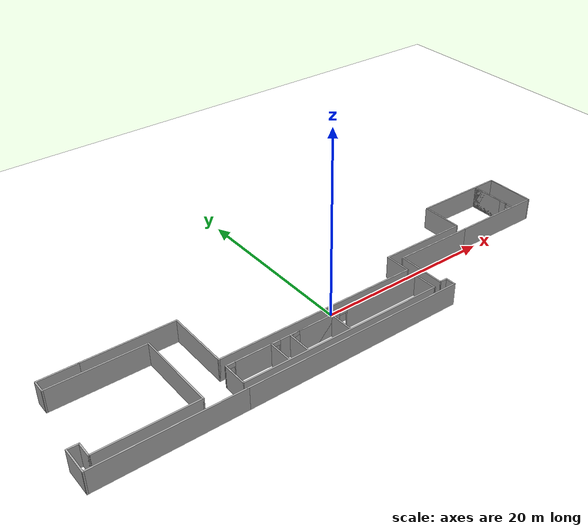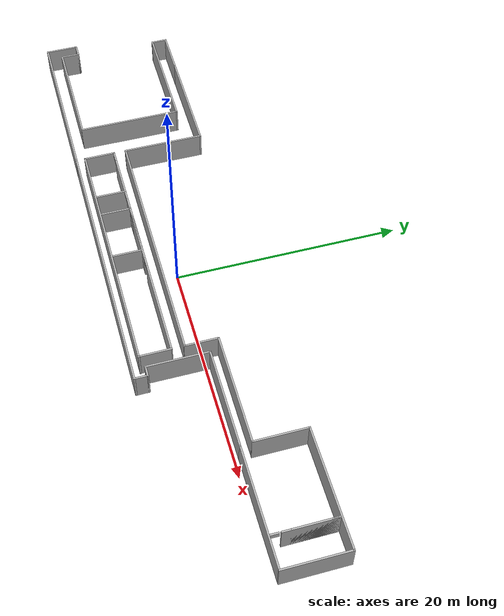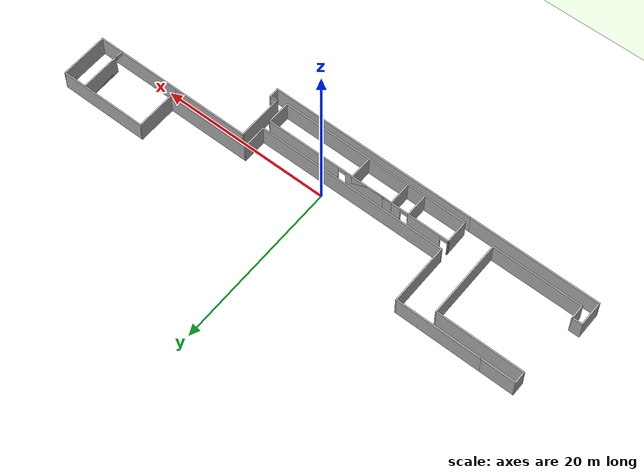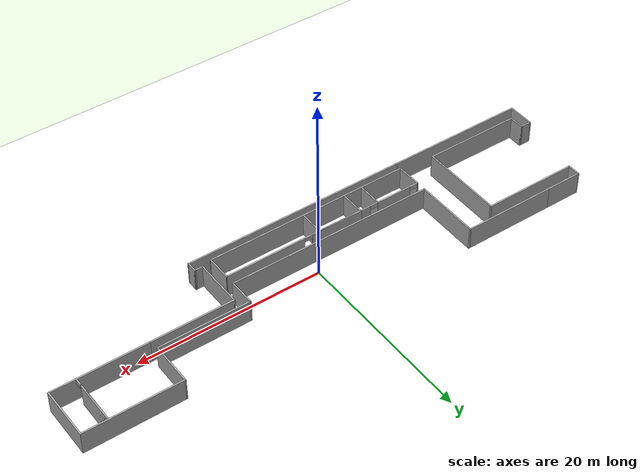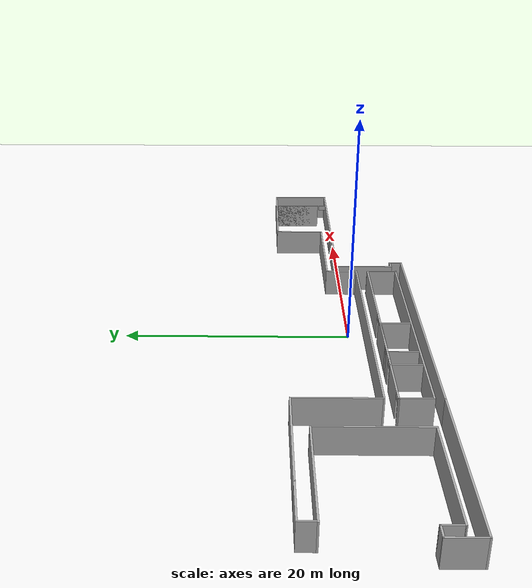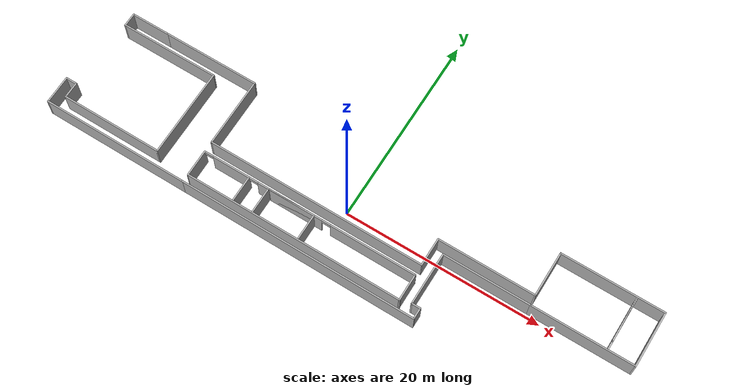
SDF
<?xml version='1.0'?>
<sdf version='1.8'>
  <world name='office_world'>
      <physics name="1ms" type="ignored">
          <max_step_size>0.005</max_step_size>
          <real_time_factor>1.0</real_time_factor>
      </physics>
      <plugin
          filename="libignition-gazebo-physics-system.so"
          name="ignition::gazebo::systems::Physics">
      </plugin>
      <plugin
          filename="libignition-gazebo-user-commands-system.so"
          name="ignition::gazebo::systems::UserCommands">
      </plugin>
      <plugin
          filename="libignition-gazebo-scene-broadcaster-system.so"
          name="ignition::gazebo::systems::SceneBroadcaster">
      </plugin>

    <gui fullscreen="0">
      <plugin filename="GzScene3D" name="3D View">
        <ignition-gui>
            <title>3D View</title>
        </ignition-gui>
        <engine>ogre2</engine>
        <scene>scene</scene>
        <ambient_light>0.4 0.4 0.4</ambient_light>
        <background_color>0.8 0.8 0.8</background_color>
        <camera_pose>-6 0 6 0 0.5 0</camera_pose>
      </plugin>
    </gui>

    <scene>
      <ambient>1 1 1 1</ambient>
      <background> 0.8 0.8 0.8 1</background>
    </scene>

    <model name = "office_v1">
      <pose relative_to='world'>0 0 0 0 0 0</pose>
      <static>true</static>
    <link name='Wall_1'>
      <collision name='Wall_1_Collision'>
        <geometry>
          <box>
            <size>22.5 0.15 2.5</size>
          </box>
        </geometry>
        <pose relative_to='__model__'>0 0 1.25 0 -0 0</pose>
      </collision>
      <visual name='Wall_1_Visual'>
        <pose relative_to='world'>0 0 1.25 0 -0 0</pose>
        <geometry>
          <box>
            <size>22.5 0.15 2.5</size>
          </box>
        </geometry>
        <material>
          <ambient>0.7 0.7 0.7 1</ambient>
          <diffuse> 0.7 0.7 0.7 1</diffuse>
          <specular>0.1 0.1 0.1 1 </specular>
        </material>
      </visual>
      <pose relative_to='__model__'>-2.525 -1.425 0 0 -0 0</pose>
    </link>
    <link name='Wall_18'>
      <collision name='Wall_18_Collision'>
        <geometry>
          <box>
            <size>9 0.15 2.5</size>
          </box>
        </geometry>
        <pose relative_to='__model__'>0 0 1.25 0 -0 0</pose>
      </collision>
      <visual name='Wall_18_Visual'>
        <pose relative_to='world'>0 0 1.25 0 -0 0</pose>
        <geometry>
          <box>
            <size>9 0.15 2.5</size>
          </box>
        </geometry>
      <material>
          <ambient>0.7 0.7 0.7 1</ambient>
          <diffuse> 0.7 0.7 0.7 1</diffuse>
          <specular>0.1 0.1 0.1 1 </specular>
      </material>
      </visual>
      <pose relative_to='__model__'>14.175 0.425 0 0 -0 0</pose>
    </link>
    <link name='Wall_19'>
      <collision name='Wall_19_Collision'>
        <geometry>
          <box>
            <size>10.25 0.15 2.5</size>
          </box>
        </geometry>
        <pose relative_to='__model__'>0 0 1.25 0 -0 0</pose>
      </collision>
      <visual name='Wall_19_Visual'>
        <pose relative_to='world'>0 0 1.25 0 -0 0</pose>
        <geometry>
          <box>
            <size>10.25 0.15 2.5</size>
          </box>
        </geometry>
      <material>
          <ambient>0.7 0.7 0.7 1</ambient>
          <diffuse> 0.7 0.7 0.7 1</diffuse>
          <specular>0.1 0.1 0.1 1 </specular>
      </material>
      </visual>
      <pose relative_to='__model__'>23.65 0.425 0 0 -0 0</pose>
    </link>
    <link name='Wall_2'>
      <collision name='Wall_2_Collision'>
        <geometry>
          <box>
            <size>3 0.15 2.5</size>
          </box>
        </geometry>
        <pose relative_to='__model__'>0 0 1.25 0 -0 0</pose>
      </collision>
      <visual name='Wall_2_Visual'>
        <pose relative_to='world'>0 0 1.25 0 -0 0</pose>
        <geometry>
          <box>
            <size>3 0.15 2.5</size>
          </box>
        </geometry>
      <material>
          <ambient>0.7 0.7 0.7 1</ambient>
          <diffuse> 0.7 0.7 0.7 1</diffuse>
          <specular>0.1 0.1 0.1 1 </specular>
      </material>
      </visual>
      <pose relative_to='__model__'>8.65 -0 0 0 -0 1.5708</pose>
    </link>
    <link name='Wall_22'>
      <pose relative_to='__model__'>-2.525 -2.525 0 0 -0 0</pose>
      <visual name='Wall_22_Visual_0'>
        <pose relative_to='world'>-11.1859 0 1.25 0 -0 0</pose>
        <geometry>
          <box>
            <size>0.128177 0.15 2.5</size>
          </box>
        </geometry>
      <material>
          <ambient>0.7 0.7 0.7 1</ambient>
          <diffuse> 0.7 0.7 0.7 1</diffuse>
          <specular>0.1 0.1 0.1 1 </specular>
      </material>
      </visual>
      <collision name='Wall_22_Collision_0'>
        <geometry>
          <box>
            <size>0.128177 0.15 2.5</size>
          </box>
        </geometry>
        <pose relative_to='__model__'>-11.1859 0 1.25 0 -0 0</pose>
      </collision>
      <visual name='Wall_22_Visual_1'>
        <pose relative_to='world'>-8.24603 0 1.25 0 -0 0</pose>
        <geometry>
          <box>
            <size>3.95159 0.15 2.5</size>
          </box>
        </geometry>
      <material>
          <ambient>0.7 0.7 0.7 1</ambient>
          <diffuse> 0.7 0.7 0.7 1</diffuse>
          <specular>0.1 0.1 0.1 1 </specular>
      </material>
      </visual>
      <collision name='Wall_22_Collision_1'>
        <geometry>
          <box>
            <size>3.95159 0.15 2.5</size>
          </box>
        </geometry>
        <pose relative_to='__model__'>-8.24603 0 1.25 0 -0 0</pose>
      </collision>
      <visual name='Wall_22_Visual_2'>
        <pose relative_to='world'>-4.73281 0 1.25 0 -0 0</pose>
        <geometry>
          <box>
            <size>1.27485 0.15 2.5</size>
          </box>
        </geometry>
      <material>
          <ambient>0.7 0.7 0.7 1</ambient>
          <diffuse> 0.7 0.7 0.7 1</diffuse>
          <specular>0.1 0.1 0.1 1 </specular>
      </material>
      </visual>
      <collision name='Wall_22_Collision_2'>
        <geometry>
          <box>
            <size>1.27485 0.15 2.5</size>
          </box>
        </geometry>
        <pose relative_to='__model__'>-4.73281 0 1.25 0 -0 0</pose>
      </collision>
      <visual name='Wall_22_Visual_3'>
        <pose relative_to='world'>-0.86218 0 1.25 0 -0 0</pose>
        <geometry>
          <box>
            <size>4.6664 0.15 2.5</size>
          </box>
        </geometry>
      <material>
          <ambient>0.7 0.7 0.7 1</ambient>
          <diffuse> 0.7 0.7 0.7 1</diffuse>
          <specular>0.1 0.1 0.1 1 </specular>
      </material>
      </visual>
      <collision name='Wall_22_Collision_3'>
        <geometry>
          <box>
            <size>4.6664 0.15 2.5</size>
          </box>
        </geometry>
        <pose relative_to='__model__'>-0.86218 0 1.25 0 -0 0</pose>
      </collision>
      <visual name='Wall_22_Visual_4'>
        <pose relative_to='world'>6.81051 0 1.25 0 -0 0</pose>
        <geometry>
          <box>
            <size>8.87898 0.15 2.5</size>
          </box>
        </geometry>
      <material>
          <ambient>0.7 0.7 0.7 1</ambient>
          <diffuse> 0.7 0.7 0.7 1</diffuse>
          <specular>0.1 0.1 0.1 1 </specular>
      </material>
      </visual>
      <collision name='Wall_22_Collision_4'>
        <geometry>
          <box>
            <size>8.87898 0.15 2.5</size>
          </box>
        </geometry>
        <pose relative_to='__model__'>6.81051 0 1.25 0 -0 0</pose>
      </collision>
      <visual name='Wall_22_Visual_5'>
        <pose relative_to='world'>-10.6718 0 2.25 0 -0 0</pose>
        <geometry>
          <box>
            <size>0.9 0.15 0.5</size>
          </box>
        </geometry>
      <material>
          <ambient>0.7 0.7 0.7 1</ambient>
          <diffuse> 0.7 0.7 0.7 1</diffuse>
          <specular>0.1 0.1 0.1 1 </specular>
      </material>
      </visual>
      <collision name='Wall_22_Collision_5'>
        <geometry>
          <box>
            <size>0.9 0.15 0.5</size>
          </box>
        </geometry>
        <pose relative_to='__model__'>-10.6718 0 2.25 0 -0 0</pose>
      </collision>
      <visual name='Wall_22_Visual_6'>
        <pose relative_to='world'>-5.82023 0 2.25 0 -0 0</pose>
        <geometry>
          <box>
            <size>0.9 0.15 0.5</size>
          </box>
        </geometry>
      <material>
          <ambient>0.7 0.7 0.7 1</ambient>
          <diffuse> 0.7 0.7 0.7 1</diffuse>
          <specular>0.1 0.1 0.1 1 </specular>
      </material>
      </visual>
      <collision name='Wall_22_Collision_6'>
        <geometry>
          <box>
            <size>0.9 0.15 0.5</size>
          </box>
        </geometry>
        <pose relative_to='__model__'>-5.82023 0 2.25 0 -0 0</pose>
      </collision>
      <visual name='Wall_22_Visual_7'>
        <pose relative_to='world'>-3.64538 0 2.25 0 -0 0</pose>
        <geometry>
          <box>
            <size>0.9 0.15 0.5</size>
          </box>
        </geometry>
      <material>
          <ambient>0.7 0.7 0.7 1</ambient>
          <diffuse> 0.7 0.7 0.7 1</diffuse>
          <specular>0.1 0.1 0.1 1 </specular>
      </material>
      </visual>
      <collision name='Wall_22_Collision_7'>
        <geometry>
          <box>
            <size>0.9 0.15 0.5</size>
          </box>
        </geometry>
        <pose relative_to='__model__'>-3.64538 0 2.25 0 -0 0</pose>
      </collision>
      <visual name='Wall_22_Visual_8'>
        <pose relative_to='world'>1.92102 0 2.25 0 -0 0</pose>
        <geometry>
          <box>
            <size>0.9 0.15 0.5</size>
          </box>
        </geometry>
      <material>
          <ambient>0.7 0.7 0.7 1</ambient>
          <diffuse> 0.7 0.7 0.7 1</diffuse>
          <specular>0.1 0.1 0.1 1 </specular>
      </material>
      </visual>
      <collision name='Wall_22_Collision_8'>
        <geometry>
          <box>
            <size>0.9 0.15 0.5</size>
          </box>
        </geometry>
        <pose relative_to='__model__'>1.92102 0 2.25 0 -0 0</pose>
      </collision>
    </link>
    <link name='Wall_24'>
      <collision name='Wall_24_Collision'>
        <geometry>
          <box>
            <size>2.84984 0.15 2.5</size>
          </box>
        </geometry>
        <pose relative_to='__model__'>0 0 1.25 0 -0 0</pose>
      </collision>
      <visual name='Wall_24_Visual'>
        <pose relative_to='world'>0 0 1.25 0 -0 0</pose>
        <geometry>
          <box>
            <size>2.84984 0.15 2.5</size>
          </box>
        </geometry>
      <material>
          <ambient>0.7 0.7 0.7 1</ambient>
          <diffuse> 0.7 0.7 0.7 1</diffuse>
          <specular>0.1 0.1 0.1 1 </specular>
      </material>
      </visual>
      <pose relative_to='__model__'>8.6576 -3.8749 0 0 -0 -1.56516</pose>
    </link>
    <link name='Wall_25'>
      <collision name='Wall_25_Collision'>
        <geometry>
          <box>
            <size>22.5 0.15 2.5</size>
          </box>
        </geometry>
        <pose relative_to='__model__'>0 0 1.25 0 -0 0</pose>
      </collision>
      <visual name='Wall_25_Visual'>
        <pose relative_to='world'>0 0 1.25 0 -0 0</pose>
        <geometry>
          <box>
            <size>22.5 0.15 2.5</size>
          </box>
        </geometry>
      <material>
          <ambient>0.7 0.7 0.7 1</ambient>
          <diffuse> 0.7 0.7 0.7 1</diffuse>
          <specular>0.1 0.1 0.1 1 </specular>
      </material>
      </visual>
      <pose relative_to='__model__'>-2.47937 -5.2248 0 0 -0 3.14159</pose>
    </link>
    <link name='Wall_26'>
      <collision name='Wall_26_Collision'>
        <geometry>
          <box>
            <size>2.84984 0.15 2.5</size>
          </box>
        </geometry>
        <pose relative_to='__model__'>0 0 1.25 0 -0 0</pose>
      </collision>
      <visual name='Wall_26_Visual'>
        <pose relative_to='world'>0 0 1.25 0 -0 0</pose>
        <geometry>
          <box>
            <size>2.84984 0.15 2.5</size>
          </box>
        </geometry>
      <material>
          <ambient>0.7 0.7 0.7 1</ambient>
          <diffuse> 0.7 0.7 0.7 1</diffuse>
          <specular>0.1 0.1 0.1 1 </specular>
      </material>
      </visual>
      <pose relative_to='__model__'>-13.6924 -3.8749 0 0 -0 1.57643</pose>
    </link>
    <link name='Wall_3'>
      <collision name='Wall_3_Collision'>
        <geometry>
          <box>
            <size>10 0.15 2.5</size>
          </box>
        </geometry>
        <pose relative_to='__model__'>0 0 1.25 0 -0 0</pose>
      </collision>
      <visual name='Wall_3_Visual'>
        <pose relative_to='world'>0 0 1.25 0 -0 0</pose>
        <geometry>
          <box>
            <size>10 0.15 2.5</size>
          </box>
        </geometry>
      <material>
          <ambient>0.7 0.7 0.7 1</ambient>
          <diffuse> 0.7 0.7 0.7 1</diffuse>
          <specular>0.1 0.1 0.1 1 </specular>
      </material>
      </visual>
      <pose relative_to='__model__'>13.575 1.425 0 0 -0 0</pose>
    </link>
    <link name='Wall_30'>
      <collision name='Wall_30_Collision'>
        <geometry>
          <box>
            <size>5.5 0.15 2.5</size>
          </box>
        </geometry>
        <pose relative_to='__model__'>0 0 1.25 0 -0 0</pose>
      </collision>
      <visual name='Wall_30_Visual'>
        <pose relative_to='world'>0 0 1.25 0 -0 0</pose>
        <geometry>
          <box>
            <size>5.5 0.15 2.5</size>
          </box>
        </geometry>
      <material>
          <ambient>0.7 0.7 0.7 1</ambient>
          <diffuse> 0.7 0.7 0.7 1</diffuse>
          <specular>0.1 0.1 0.1 1 </specular>
      </material>
      </visual>
      <pose relative_to='__model__'>9.75 -2.25 0 0 -0 -1.5708</pose>
    </link>
    <link name='Wall_31'>
      <collision name='Wall_31_Collision'>
        <geometry>
          <box>
            <size>1 0.15 2.5</size>
          </box>
        </geometry>
        <pose relative_to='__model__'>0 0 1.25 0 -0 0</pose>
      </collision>
      <visual name='Wall_31_Visual'>
        <pose relative_to='world'>0 0 1.25 0 -0 0</pose>
        <geometry>
          <box>
            <size>1 0.15 2.5</size>
          </box>
        </geometry>
      <material>
          <ambient>0.7 0.7 0.7 1</ambient>
          <diffuse> 0.7 0.7 0.7 1</diffuse>
          <specular>0.1 0.1 0.1 1 </specular>
      </material>
      </visual>
      <pose relative_to='__model__'>10.175 -4.925 0 0 -0 0</pose>
    </link>
    <link name='Wall_32'>
      <collision name='Wall_32_Collision'>
        <geometry>
          <box>
            <size>1.25 0.15 2.5</size>
          </box>
        </geometry>
        <pose relative_to='__model__'>0 0 1.25 0 -0 0</pose>
      </collision>
      <visual name='Wall_32_Visual'>
        <pose relative_to='world'>0 0 1.25 0 -0 0</pose>
        <geometry>
          <box>
            <size>1.25 0.15 2.5</size>
          </box>
        </geometry>
      <material>
          <ambient>0.7 0.7 0.7 1</ambient>
          <diffuse> 0.7 0.7 0.7 1</diffuse>
          <specular>0.1 0.1 0.1 1 </specular>
      </material>
      </visual>
      <pose relative_to='__model__'>10.6 -5.475 0 0 -0 -1.5708</pose>
    </link>
    <link name='Wall_33'>
      <collision name='Wall_33_Collision'>
        <geometry>
          <box>
            <size>24.5 0.15 2.5</size>
          </box>
        </geometry>
        <pose relative_to='__model__'>0 0 1.25 0 -0 0</pose>
      </collision>
      <visual name='Wall_33_Visual'>
        <pose relative_to='world'>0 0 1.25 0 -0 0</pose>
        <geometry>
          <box>
            <size>24.5 0.15 2.5</size>
          </box>
        </geometry>
      <material>
          <ambient>0.7 0.7 0.7 1</ambient>
          <diffuse> 0.7 0.7 0.7 1</diffuse>
          <specular>0.1 0.1 0.1 1 </specular>
      </material>
      </visual>
      <pose relative_to='__model__'>-1.575 -6.025 0 0 -0 3.14159</pose>
    </link>
    <link name='Wall_35'>
      <collision name='Wall_35_Collision'>
        <geometry>
          <box>
            <size>7.25 0.15 2.5</size>
          </box>
        </geometry>
        <pose relative_to='__model__'>0 0 1.25 0 -0 0</pose>
      </collision>
      <visual name='Wall_35_Visual'>
        <pose relative_to='world'>0 0 1.25 0 -0 0</pose>
        <geometry>
          <box>
            <size>7.25 0.15 2.5</size>
          </box>
        </geometry>
      <material>
          <ambient>0.7 0.7 0.7 1</ambient>
          <diffuse> 0.7 0.7 0.7 1</diffuse>
          <specular>0.1 0.1 0.1 1 </specular>
      </material>
      </visual>
      <pose relative_to='__model__'>-13.7 2.125 0 0 -0 1.5708</pose>
    </link>
    <link name='Wall_36'>
      <collision name='Wall_36_Collision'>
        <geometry>
          <box>
            <size>10 0.15 2.5</size>
          </box>
        </geometry>
        <pose relative_to='__model__'>0 0 1.25 0 -0 0</pose>
      </collision>
      <visual name='Wall_36_Visual'>
        <pose relative_to='world'>0 0 1.25 0 -0 0</pose>
        <geometry>
          <box>
            <size>10 0.15 2.5</size>
          </box>
        </geometry>
      <material>
          <ambient>0.7 0.7 0.7 1</ambient>
          <diffuse> 0.7 0.7 0.7 1</diffuse>
          <specular>0.1 0.1 0.1 1 </specular>
      </material>
      </visual>
      <pose relative_to='__model__'>-18.625 5.675 0 0 -0 3.14159</pose>
    </link>
    <link name='Wall_38'>
      <collision name='Wall_38_Collision'>
        <geometry>
          <box>
            <size>15.25 0.15 2.5</size>
          </box>
        </geometry>
        <pose relative_to='__model__'>0 0 1.25 0 -0 0</pose>
      </collision>
      <visual name='Wall_38_Visual'>
        <pose relative_to='world'>0 0 1.25 0 -0 0</pose>
        <geometry>
          <box>
            <size>15.25 0.15 2.5</size>
          </box>
        </geometry>
      <material>
          <ambient>0.7 0.7 0.7 1</ambient>
          <diffuse> 0.7 0.7 0.7 1</diffuse>
          <specular>0.1 0.1 0.1 1 </specular>
      </material>
      </visual>
      <pose relative_to='__model__'>-21.3 -6.025 0 0 -0 3.14159</pose>
    </link>
    <link name='Wall_39'>
      <collision name='Wall_39_Collision'>
        <geometry>
          <box>
            <size>3 0.15 2.5</size>
          </box>
        </geometry>
        <pose relative_to='__model__'>0 0 1.25 0 -0 0</pose>
      </collision>
      <visual name='Wall_39_Visual'>
        <pose relative_to='world'>0 0 1.25 0 -0 0</pose>
        <geometry>
          <box>
            <size>3 0.15 2.5</size>
          </box>
        </geometry>
      <material>
          <ambient>0.7 0.7 0.7 1</ambient>
          <diffuse> 0.7 0.7 0.7 1</diffuse>
          <specular>0.1 0.1 0.1 1 </specular>
      </material>
      </visual>
      <pose relative_to='__model__'>-28.85 -4.6 0 0 -0 1.5708</pose>
    </link>
    <link name='Wall_4'>
      <collision name='Wall_4_Collision'>
        <geometry>
          <box>
            <size>4.75 0.15 2.5</size>
          </box>
        </geometry>
        <pose relative_to='__model__'>0 0 1.25 0 -0 0</pose>
      </collision>
      <visual name='Wall_4_Visual'>
        <pose relative_to='world'>0 0 1.25 0 -0 0</pose>
        <geometry>
          <box>
            <size>4.75 0.15 2.5</size>
          </box>
        </geometry>
      <material>
          <ambient>0.7 0.7 0.7 1</ambient>
          <diffuse> 0.7 0.7 0.7 1</diffuse>
          <specular>0.1 0.1 0.1 1 </specular>
      </material>
      </visual>
      <pose relative_to='__model__'>18.5 3.725 0 0 -0 1.5708</pose>
    </link>
    <link name='Wall_40'>
      <collision name='Wall_40_Collision'>
        <geometry>
          <box>
            <size>1.25 0.15 2.5</size>
          </box>
        </geometry>
        <pose relative_to='__model__'>0 0 1.25 0 -0 0</pose>
      </collision>
      <visual name='Wall_40_Visual'>
        <pose relative_to='world'>0 0 1.25 0 -0 0</pose>
        <geometry>
          <box>
            <size>1.25 0.15 2.5</size>
          </box>
        </geometry>
      <material>
          <ambient>0.7 0.7 0.7 1</ambient>
          <diffuse> 0.7 0.7 0.7 1</diffuse>
          <specular>0.1 0.1 0.1 1 </specular>
      </material>
      </visual>
      <pose relative_to='__model__'>-28.3 -3.175 0 0 -0 0</pose>
    </link>
    <link name='Wall_41'>
      <collision name='Wall_41_Collision'>
        <geometry>
          <box>
            <size>1.75 0.15 2.5</size>
          </box>
        </geometry>
        <pose relative_to='__model__'>0 0 1.25 0 -0 0</pose>
      </collision>
      <visual name='Wall_41_Visual'>
        <pose relative_to='world'>0 0 1.25 0 -0 0</pose>
        <geometry>
          <box>
            <size>1.75 0.15 2.5</size>
          </box>
        </geometry>
      <material>
          <ambient>0.7 0.7 0.7 1</ambient>
          <diffuse> 0.7 0.7 0.7 1</diffuse>
          <specular>0.1 0.1 0.1 1 </specular>
      </material>
      </visual>
      <pose relative_to='__model__'>-27.75 -3.975 0 0 -0 -1.5708</pose>
    </link>
    <link name='Wall_42'>
      <collision name='Wall_42_Collision'>
        <geometry>
          <box>
            <size>10.5 0.15 2.5</size>
          </box>
        </geometry>
        <pose relative_to='__model__'>0 0 1.25 0 -0 0</pose>
      </collision>
      <visual name='Wall_42_Visual'>
        <pose relative_to='world'>0 0 1.25 0 -0 0</pose>
        <geometry>
          <box>
            <size>10.5 0.15 2.5</size>
          </box>
        </geometry>
      <material>
          <ambient>0.7 0.7 0.7 1</ambient>
          <diffuse> 0.7 0.7 0.7 1</diffuse>
          <specular>0.1 0.1 0.1 1 </specular>
      </material>
      </visual>
      <pose relative_to='__model__'>-22.575 -4.775 0 0 -0 0</pose>
    </link>
    <link name='Wall_43'>
      <collision name='Wall_43_Collision'>
        <geometry>
          <box>
            <size>9.25 0.15 2.5</size>
          </box>
        </geometry>
        <pose relative_to='__model__'>0 0 1.25 0 -0 0</pose>
      </collision>
      <visual name='Wall_43_Visual'>
        <pose relative_to='world'>0 0 1.25 0 -0 0</pose>
        <geometry>
          <box>
            <size>9.25 0.15 2.5</size>
          </box>
        </geometry>
      <material>
          <ambient>0.7 0.7 0.7 1</ambient>
          <diffuse> 0.7 0.7 0.7 1</diffuse>
          <specular>0.1 0.1 0.1 1 </specular>
      </material>
      </visual>
      <pose relative_to='__model__'>-17.4 -0.225 0 0 -0 1.5708</pose>
    </link>
    <link name='Wall_44'>
      <collision name='Wall_44_Collision'>
        <geometry>
          <box>
            <size>10.25 0.15 2.5</size>
          </box>
        </geometry>
        <pose relative_to='__model__'>0 0 1.25 0 -0 0</pose>
      </collision>
      <visual name='Wall_44_Visual'>
        <pose relative_to='world'>0 0 1.25 0 -0 0</pose>
        <geometry>
          <box>
            <size>10.25 0.15 2.5</size>
          </box>
        </geometry>
      <material>
          <ambient>0.7 0.7 0.7 1</ambient>
          <diffuse> 0.7 0.7 0.7 1</diffuse>
          <specular>0.1 0.1 0.1 1 </specular>
      </material>
      </visual>
      <pose relative_to='__model__'>-22.45 4.325 0 0 -0 3.14159</pose>
    </link>
    <link name='Wall_47'>
      <collision name='Wall_47_Collision'>
        <geometry>
          <box>
            <size>4 0.15 2.5</size>
          </box>
        </geometry>
        <pose relative_to='__model__'>0 0 1.25 0 -0 0</pose>
      </collision>
      <visual name='Wall_47_Visual'>
        <pose relative_to='world'>0 0 1.25 0 -0 0</pose>
        <geometry>
          <box>
            <size>4 0.15 2.5</size>
          </box>
        </geometry>
      <material>
          <ambient>0.7 0.7 0.7 1</ambient>
          <diffuse> 0.7 0.7 0.7 1</diffuse>
          <specular>0.1 0.1 0.1 1 </specular>
      </material>
      </visual>
      <pose relative_to='__model__'>-25.475 5.675 0 0 -0 3.14159</pose>
    </link>
    <link name='Wall_49'>
      <collision name='Wall_49_Collision'>
        <geometry>
          <box>
            <size>1.5 0.15 2.5</size>
          </box>
        </geometry>
        <pose relative_to='__model__'>0 0 1.25 0 -0 0</pose>
      </collision>
      <visual name='Wall_49_Visual'>
        <pose relative_to='world'>0 0 1.25 0 -0 0</pose>
        <geometry>
          <box>
            <size>1.5 0.15 2.5</size>
          </box>
        </geometry>
      <material>
          <ambient>0.7 0.7 0.7 1</ambient>
          <diffuse> 0.7 0.7 0.7 1</diffuse>
          <specular>0.1 0.1 0.1 1 </specular>
      </material>
      </visual>
      <pose relative_to='__model__'>-27.5 5 0 0 -0 1.5708</pose>
    </link>
    <link name='Wall_5'>
      <collision name='Wall_5_Collision'>
        <geometry>
          <box>
            <size>10.5 0.15 2.5</size>
          </box>
        </geometry>
        <pose relative_to='__model__'>0 0 1.25 0 -0 0</pose>
      </collision>
      <visual name='Wall_5_Visual'>
        <pose relative_to='world'>0 0 1.25 0 -0 0</pose>
        <geometry>
          <box>
            <size>10.5 0.15 2.5</size>
          </box>
        </geometry>
      <material>
          <ambient>0.7 0.7 0.7 1</ambient>
          <diffuse> 0.7 0.7 0.7 1</diffuse>
          <specular>0.1 0.1 0.1 1 </specular>
      </material>
      </visual>
      <pose relative_to='__model__'>23.675 6.025 0 0 -0 0</pose>
    </link>
    <link name='Wall_51'>
      <collision name='Wall_51_Collision'>
        <geometry>
          <box>
            <size>5.75 0.15 2.5</size>
          </box>
        </geometry>
        <pose relative_to='__model__'>0 0 1.25 0 -0 0</pose>
      </collision>
      <visual name='Wall_51_Visual'>
        <pose relative_to='world'>0 0 1.25 0 -0 0</pose>
        <geometry>
          <box>
            <size>5.75 0.15 2.5</size>
          </box>
        </geometry>
      <material>
          <ambient>0.7 0.7 0.7 1</ambient>
          <diffuse> 0.7 0.7 0.7 1</diffuse>
          <specular>0.1 0.1 0.1 1 </specular>
      </material>
      </visual>
      <pose relative_to='__model__'>28.85 3.225 0 0 -0 -1.5708</pose>
    </link>
    <link name='Wall_53'>
      <pose relative_to='__model__'>26.1401 3.21182 0 0 -0 1.5708</pose>
      <visual name='Wall_53_Visual_0'>
        <pose relative_to='world'>-2.74089 0 1.25 0 -0 0</pose>
        <geometry>
          <box>
            <size>0.01822 0.15 2.5</size>
          </box>
        </geometry>
      <material>
          <ambient>0.7 0.7 0.7 1</ambient>
          <diffuse> 0.7 0.7 0.7 1</diffuse>
          <specular>0.1 0.1 0.1 1 </specular>
      </material>
      </visual>
      <collision name='Wall_53_Collision_0'>
        <geometry>
          <box>
            <size>0.01822 0.15 2.5</size>
          </box>
        </geometry>
        <pose relative_to='__model__'>-2.74089 0 1.25 0 -0 0</pose>
      </collision>
      <visual name='Wall_53_Visual_1'>
        <pose relative_to='world'>0.45911 0 1.25 0 -0 0</pose>
        <geometry>
          <box>
            <size>4.58178 0.15 2.5</size>
          </box>
        </geometry>
      <material>
          <ambient>0.7 0.7 0.7 1</ambient>
          <diffuse> 0.7 0.7 0.7 1</diffuse>
          <specular>0.1 0.1 0.1 1 </specular>
      </material>
      </visual>
      <collision name='Wall_53_Collision_1'>
        <geometry>
          <box>
            <size>4.58178 0.15 2.5</size>
          </box>
        </geometry>
        <pose relative_to='__model__'>0.45911 0 1.25 0 -0 0</pose>
      </collision>
      <visual name='Wall_53_Visual_2'>
        <pose relative_to='world'>0.840765 0 1.25 0 -0 0</pose>
        <geometry>
          <box>
            <size>3.81847 0.15 2.5</size>
          </box>
        </geometry>
      <material>
          <ambient>0.7 0.7 0.7 1</ambient>
          <diffuse> 0.7 0.7 0.7 1</diffuse>
          <specular>0.1 0.1 0.1 1 </specular>
      </material>
      </visual>
      <collision name='Wall_53_Collision_2'>
        <geometry>
          <box>
            <size>3.81847 0.15 2.5</size>
          </box>
        </geometry>
        <pose relative_to='__model__'>0.840765 0 1.25 0 -0 0</pose>
      </collision>
      <visual name='Wall_53_Visual_3'>
        <pose relative_to='world'>-2.35012 0 2.25 0 -0 0</pose>
        <geometry>
          <box>
            <size>0.76331 0.15 0.5</size>
          </box>
        </geometry>
      <material>
          <ambient>0.7 0.7 0.7 1</ambient>
          <diffuse> 0.7 0.7 0.7 1</diffuse>
          <specular>0.1 0.1 0.1 1 </specular>
      </material>
      </visual>
      <collision name='Wall_53_Collision_3'>
        <geometry>
          <box>
            <size>0.76331 0.15 0.5</size>
          </box>
        </geometry>
        <pose relative_to='__model__'>-2.35012 0 2.25 0 -0 0</pose>
      </collision>
    </link>
    <link name='Wall_56'>
      <collision name='Wall_56_Collision'>
        <geometry>
          <box>
            <size>2.75 0.15 2.5</size>
          </box>
        </geometry>
        <pose relative_to='__model__'>0 0 1.25 0 -0 0</pose>
      </collision>
      <visual name='Wall_56_Visual'>
        <pose relative_to='world'>0 0 1.25 0 -0 0</pose>
        <geometry>
          <box>
            <size>2.75 0.15 2.5</size>
          </box>
        </geometry>
      <material>
          <ambient>0.7 0.7 0.7 1</ambient>
          <diffuse> 0.7 0.7 0.7 1</diffuse>
          <specular>0.1 0.1 0.1 1 </specular>
      </material>
      </visual>
      <pose relative_to='__model__'>-8.85 -3.825 0 0 -0 -1.5708</pose>
    </link>
    <link name='Wall_59'>
      <collision name='Wall_59_Collision'>
        <geometry>
          <box>
            <size>2.75 0.15 2.5</size>
          </box>
        </geometry>
        <pose relative_to='__model__'>0 0 1.25 0 -0 0</pose>
      </collision>
      <visual name='Wall_59_Visual'>
        <pose relative_to='world'>0 0 1.25 0 -0 0</pose>
        <geometry>
          <box>
            <size>2.75 0.15 2.5</size>
          </box>
        </geometry>
      <material>
          <ambient>0.7 0.7 0.7 1</ambient>
          <diffuse> 0.7 0.7 0.7 1</diffuse>
          <specular>0.1 0.1 0.1 1 </specular>
      </material>
      </visual>
      <pose relative_to='__model__'>-6.75 -3.825 0 0 -0 -1.5708</pose>
    </link>
    <link name='Wall_61'>
      <collision name='Wall_61_Collision'>
        <geometry>
          <box>
            <size>5 0.15 2.5</size>
          </box>
        </geometry>
        <pose relative_to='__model__'>0 0 1.25 0 -0 0</pose>
      </collision>
      <visual name='Wall_61_Visual'>
        <pose relative_to='world'>0 0 1.25 0 -0 0</pose>
        <geometry>
          <box>
            <size>5 0.15 2.5</size>
          </box>
        </geometry>
      <material>
          <ambient>0.7 0.7 0.7 1</ambient>
          <diffuse> 0.7 0.7 0.7 1</diffuse>
          <specular>0.1 0.1 0.1 1 </specular>
      </material>
      </visual>
      <pose relative_to='__model__'>-4.325 -2.525 0 0 -0 0</pose>
    </link>
    <link name='Wall_62'>
      <collision name='Wall_62_Collision'>
        <geometry>
          <box>
            <size>2.75 0.15 2.5</size>
          </box>
        </geometry>
        <pose relative_to='__model__'>0 0 1.25 0 -0 0</pose>
      </collision>
      <visual name='Wall_62_Visual'>
        <pose relative_to='world'>0 0 1.25 0 -0 0</pose>
        <geometry>
          <box>
            <size>2.75 0.15 2.5</size>
          </box>
        </geometry>
      <material>
          <ambient>0.7 0.7 0.7 1</ambient>
          <diffuse> 0.7 0.7 0.7 1</diffuse>
          <specular>0.1 0.1 0.1 1 </specular>
      </material>
      </visual>
      <pose relative_to='__model__'>-1.9 -3.825 0 0 -0 -1.5708</pose>
    </link>
    <static>1</static>
  </model>
  <model name='ground_plane'>
      <static>true</static>
      <link name='link'>
          <collision name='collision'>
              <geometry>
                  <plane>
                      <normal>0 0 1</normal>
                      <size>100 100</size>
                  </plane>
              </geometry>
              <surface>
                  <friction>
                      <ode>
                          <mu>1.0</mu>
                          <mu2>1.0</mu2>
                      </ode>
                  </friction>
              </surface>
          </collision>
          <visual name='visual'>
              <geometry>
                  <plane>
                      <normal>0 0 1</normal>
                      <size>100 100</size>
                  </plane>
              </geometry>
              <material>
                  <ambient>1 1 1 1</ambient>
                  <diffuse>1 1 1 1</diffuse>
                  <emissive>1 1 1 1</emissive>
                  <specular>0.5 0.5 0.5 1</specular>
              </material>
          </visual>
      </link>
  </model>
  </world>
  <light type="directional" name="sun">
    <cast_shadows>true</cast_shadows>
    <pose>0 0 10 0 0 0</pose>
    <diffuse>0.8 0.8 0.8 1</diffuse>
    <specular>0.2 0.2 0.2 1</specular>
    <direction>-0.5 0.1 -0.9</direction>
  </light>
</sdf>
